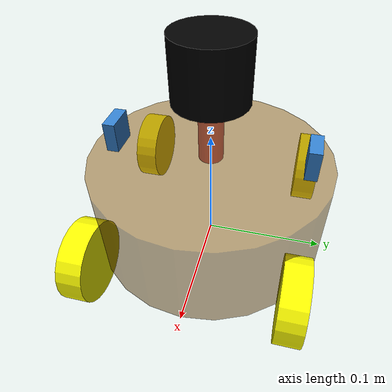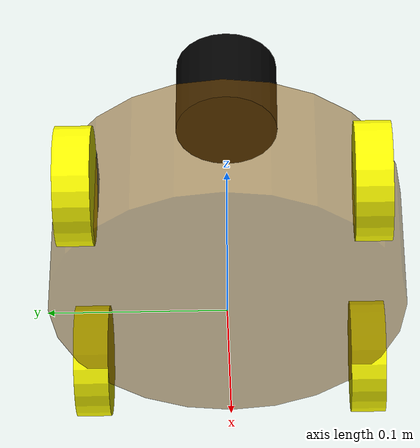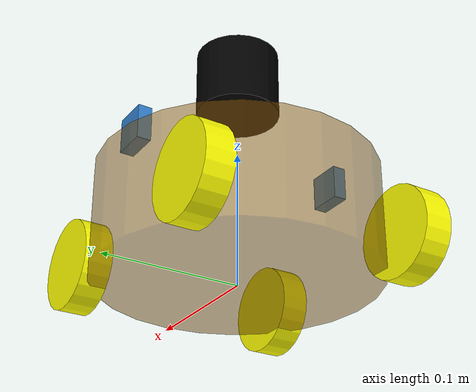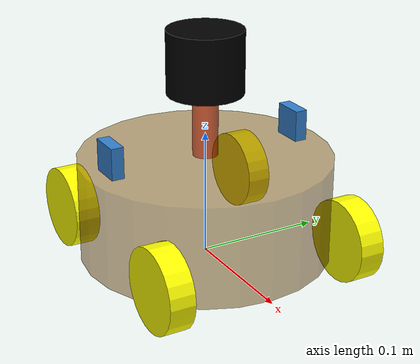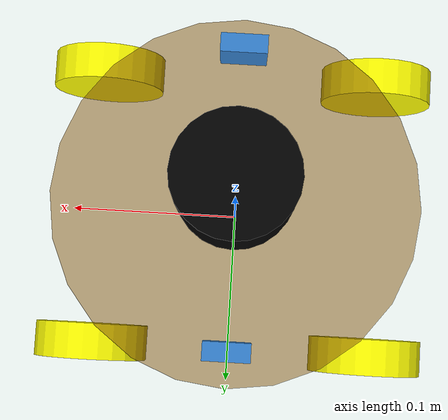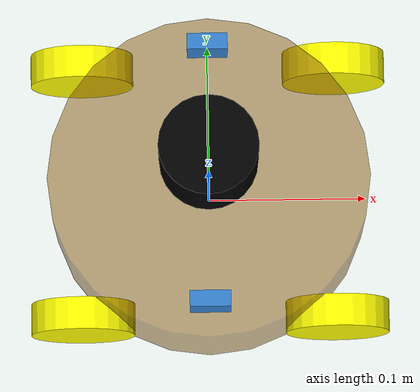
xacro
<robot name="my_robot" xmlns:xacro="http://wiki.ros.org/xacro">
    <!-- 全局参数 -->
    <xacro:property name="PI" value="3.1415926"/>
    <xacro:property name="base_link_length" value="0.08"/>
    <xacro:property name="base_link_radius" value="0.1"/>
    <xacro:property name="wheel_radius" value="0.0325"/>
    <xacro:property name="wheel_length" value="0.02"/>
    <xacro:property name="wheel_x_offset" value="0.08"/>
    <xacro:property name="wheel_y_offset" value="0.08"/>
    <xacro:property name="earth_space" value="0.010"/>
    <xacro:property name="base_link_m" value="2.0"/>
    <xacro:property name="wheel_m" value="0.1"/>
    <xacro:property name="camera_height" value="0.05"/>

    <!-- 引入 xacro 文件 -->
    <xacro:include filename="cylinder_inertial_matrix.urdf.xacro" />
    <xacro:include filename="my_base.urdf.xacro" />
    <xacro:my_base /> <!-- 调用宏来生成底盘 -->
    <xacro:include filename="my_camera.urdf.xacro" />
    <xacro:include filename="my_laser.urdf.xacro" />

    <!-- 绝对位姿获取插件 -->
    <gazebo>
      <plugin name="odom_plugin" filename="libodom_plugin.so">
        <topic_name>/absolute_pose</topic_name>
        <publish_rate>50</publish_rate>
      </plugin>
    </gazebo>

    <!-- 平面移动插件 -->
    <gazebo>
      <plugin name="planar_move_plugin" filename="libgazebo_ros_planar_move.so">
        <commandTopic>cmd_vel</commandTopic>
        <odometryTopic>odom</odometryTopic>
        <odometryFrame>odom</odometryFrame>
        <odometryRate>50.0</odometryRate>
        <robotBaseFrame>base_footprint</robotBaseFrame>
        <update_rate>50</update_rate>
      </plugin>
    </gazebo>

    <!-- 雷达传感器仿真插件 -->
  <gazebo reference="laser">
      <sensor type="ray" name="rplidar">
          <pose>0 0 0 0 0 0</pose>
          <visualize>false</visualize> <!-- Gazebo中显示雷达探测线 -->
          <update_rate>10</update_rate>
          <ray>
              <scan>
                  <horizontal>
                      <samples>360</samples>
                      <resolution>1</resolution>
                      <min_angle>-3.14159</min_angle>
                      <max_angle>3.14159</max_angle>
                  </horizontal>
              </scan>
              <range>
                  <min>0.15</min>
                  <max>12.0</max>
                  <resolution>0.01</resolution>
              </range>
              <noise>
                  <type>gaussian</type>
                  <mean>0.0</mean>
                  <stddev>0.01</stddev>
              </noise>
          </ray>
          <plugin name="gazebo_ros_rplidar_controller" filename="libgazebo_ros_laser.so">
              <topicName>/scan</topicName>
              <frameName>laser</frameName>
          </plugin>
      </sensor>
  </gazebo>
</robot>

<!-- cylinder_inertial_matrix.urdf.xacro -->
<robot name="base" xmlns:xacro="http://wiki.ros.org/xacro">
    <!-- 惯性矩阵 -->
    <xacro:macro name="sphere_inertial_matrix" params="m r">
        <inertial>
            <mass value="${m}" />
            <inertia ixx="${2*m*r*r/5}" ixy="0" ixz="0"
                iyy="${2*m*r*r/5}" iyz="0"
                izz="${2*m*r*r/5}" />
        </inertial>
    </xacro:macro>

    <xacro:macro name="cylinder_inertial_matrix" params="m r h">
        <inertial>
            <mass value="${m}" />
            <inertia ixx="${m*(3*r*r+h*h)/12}" ixy = "0" ixz = "0"
                iyy="${m*(3*r*r+h*h)/12}" iyz = "0"
                izz="${m*r*r/2}" />
        </inertial>
    </xacro:macro>

    <xacro:macro name="Box_inertial_matrix" params="m l w h">
       <inertial>
               <mass value="${m}" />
               <inertia ixx="${m*(h*h + l*l)/12}" ixy = "0" ixz = "0"
                   iyy="${m*(w*w + l*l)/12}" iyz= "0"
                   izz="${m*(w*w + h*h)/12}" />
       </inertial>
   </xacro:macro>
</robot>

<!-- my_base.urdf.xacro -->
<robot name="my_base" xmlns:xacro="http://www.ros.org/wiki/xacro">
  <xacro:macro name="my_base">
    <!-- 宏:颜色设置 -->
    <material name="black">
        <color rgba="0.0 0.0 0.0 1.0" />
    </material>
    <material name="yellow">
        <color rgba="1.0 1.0 0.0 1.0" />
    </material>

    <!-- 虚拟的 root link（无质量，无惯性） -->
    <link name="base_footprint"/>
    <!-- 原 base_link 是 base_footprint 的子链接 -->
    <joint name="base_footprint_to_base_link" type="fixed">
      <parent link="base_footprint"/>
      <child link="base_link"/>
      <origin xyz="0 0 ${wheel_radius + earth_space}" rpy="0 0 0"/>
    </joint>

    <!-- 底盘主体 -->
    <link name="base_link">
      <!-- 可视化 -->
      <visual>
        <geometry>
          <cylinder radius="${base_link_radius}" length="${base_link_length}" />
        </geometry>
        <origin xyz="0 0 0" rpy="0 0 0" />
        <material name="yellow">
          <color rgba="0.5 0.3 0.0 0.5" />
        </material>
      </visual>

      <!-- 碰撞体 -->
      <collision>
        <geometry>
          <cylinder radius="${base_link_radius}" length="${base_link_length}" />
        </geometry>
        <origin xyz="0 0 0" rpy="0 0 0" />
      </collision>

      <!-- 惯性矩阵 -->
      <inertial>
        <mass value="${base_link_m}"/>
        <origin xyz="0 0 0" rpy="0 0 0"/>
        <inertia
          ixx="${(base_link_m * (3 * base_link_radius * base_link_radius + base_link_length * base_link_length)) / 12.0}"
          ixy="0"
          ixz="0"
          iyy="${(base_link_m * (3 * base_link_radius * base_link_radius + base_link_length * base_link_length)) / 12.0}"
          iyz="0"
          izz="0.1"/>
      </inertial>
    </link>

    <!-- 四个驱动轮宏 -->
    <xacro:macro name="add_wheel" params="name x y">
      <link name="${name}_wheel">
        <visual>
          <geometry>
            <cylinder radius="${wheel_radius}" length="${wheel_length}" />
          </geometry>
          <origin xyz="0 0 0" rpy="${PI/2} 0 0" />
          <material name="yellow"/>
        </visual>
        <collision>
          <geometry>
            <cylinder radius="${wheel_radius}" length="${wheel_length}" />
          </geometry>
          <origin xyz="0 0 0" rpy="${PI/2} 0 0" />
          <!-- 添加摩擦力 -->
          <surface>
            <friction>
              <ode>
                <mu>1.0</mu>      <!-- 主摩擦系数 -->
                <mu2>1.0</mu2>    <!-- 次摩擦系数 -->
              </ode>
            </friction>
          </surface>
        </collision>
        <xacro:cylinder_inertial_matrix m="${wheel_m}" r="${wheel_radius}" h="${wheel_length}"/>
      </link>

      <joint name="${name}_wheel_joint" type="continuous">
        <parent link="base_link"/>
        <child link="${name}_wheel"/>
        <origin xyz="${x} ${y} ${-(earth_space + base_link_length/2 - wheel_radius)}" rpy="0 0 0"/>
        <axis xyz="0 1 0"/>
      </joint>
      <gazebo reference="${name}_wheel">
        <material>Gazebo/yellow</material>
      </gazebo>
    </xacro:macro>

    <!-- 四个角生成麦轮 -->
    <xacro:add_wheel name="front_left"  x="${ wheel_x_offset}"  y="${ wheel_y_offset}"/>
    <xacro:add_wheel name="front_right" x="${ wheel_x_offset}"  y="-${ wheel_y_offset}"/>
    <xacro:add_wheel name="rear_left"   x="-${wheel_x_offset}" y="${ wheel_y_offset}"/>
    <xacro:add_wheel name="rear_right"  x="-${wheel_x_offset}" y="-${wheel_y_offset}"/>
  </xacro:macro>
</robot>

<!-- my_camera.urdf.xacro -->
<!-- 摄像头 -->
<robot name="my_camera" xmlns:xacro="http://wiki.ros.org/xacro">
    <!-- 属性 -->
    <xacro:property name="camera_length" value="0.01" /> <!-- 摄像头长度(x) -->
    <xacro:property name="camera_width" value="0.025" /> <!-- 摄像头宽度(y) -->
    <xacro:property name="camera_height" value="0.025" /> <!-- 摄像头高度(z) -->
    <xacro:property name="camera_m" value="0.01" /> <!-- 摄像头质量 -->

    <!-- 安装位置 -->
    <xacro:property name="camera_x" value="0.0" />  <!-- 与车体中心对齐 -->
    <xacro:property name="camera_y_offset" value="0.08" />  <!-- 两侧偏移距离 -->
    <xacro:property name="camera_z" value="${base_link_length / 2 + camera_height / 2}" />

    <!-- 摄像头宏定义 - 可重复使用 -->
    <xacro:macro name="camera_module" params="name parent_link x y z yaw">
        <!-- 摄像头 Link -->
        <link name="${name}">
            <visual>
                <geometry>
                    <box size="${camera_length} ${camera_width} ${camera_height}" />
                </geometry>
                <origin xyz="0 0 0" rpy="0 0 0" />
                <material name="camera_blue">
                    <color rgba="0.2 0.5 0.8 1.0" />
                </material>
            </visual>
            <collision>
                <geometry>
                    <box size="${camera_length} ${camera_width} ${camera_height}" />
                </geometry>
                <origin xyz="0 0 0" rpy="0 0 0" />
            </collision>
            <xacro:Box_inertial_matrix m="${camera_m}" l="${camera_length}" w="${camera_width}" h="${camera_height}" />
        </link>

        <!-- 摄像头 Joint -->
        <joint name="${name}_joint" type="fixed">
            <parent link="${parent_link}" />
            <child link="${name}" />
            <origin xyz="${x} ${y} ${z}" rpy="0 0 ${yaw}" />
        </joint>

        <!-- Gazebo 材质 -->
        <gazebo reference="${name}">
            <material>Gazebo/Blue</material>
        </gazebo>

        <!-- Gazebo 摄像头传感器插件 -->
        <gazebo reference="${name}">
            <sensor type="camera" name="${name}_sensor">
                <update_rate>30.0</update_rate>
                <visualize>true</visualize>  <!-- 在 Gazebo 中显示摄像头视锥 -->
                <camera name="${name}">
                    <horizontal_fov>1.6</horizontal_fov>  <!-- 90度视角 = 1.6 弧度 -->
                    <image>
                        <width>1280</width>  <!-- 720p 宽度 -->
                        <height>720</height>  <!-- 720p 高度 -->
                        <format>R8G8B8</format>
                    </image>
                    <clip>
                        <near>0.02</near>
                        <far>10.0</far>
                    </clip>
                    <noise>
                        <type>gaussian</type>
                        <mean>0.0</mean>
                        <stddev>0.007</stddev>
                    </noise>
                </camera>
                <plugin name="${name}_controller" filename="libgazebo_ros_camera.so">
                    <ros>
                        <namespace></namespace>
                        <remapping>image_raw:=${name}/image_raw</remapping>
                        <remapping>camera_info:=${name}/camera_info</remapping>
                    </ros>
                    <camera_name>${name}</camera_name>
                    <frame_name>${name}</frame_name>
                    <hack_baseline>0.07</hack_baseline>
                </plugin>
            </sensor>
        </gazebo>
    </xacro:macro>

    <!-- 左侧摄像头 - 朝左 (yaw = 1.5708 = 90度) -->
    <xacro:camera_module
        name="camera1"
        parent_link="base_link"
        x="${camera_x}"
        y="${camera_y_offset}"
        z="${camera_z}"
        yaw="1.5708" />

    <!-- 右侧摄像头 - 朝右 (yaw = -1.5708 = -90度) -->
    <xacro:camera_module
        name="camera2"
        parent_link="base_link"
        x="${camera_x}"
        y="${-camera_y_offset}"
        z="${camera_z}"
        yaw="-1.5708" />

</robot>

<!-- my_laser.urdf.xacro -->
<!-- 雷达 -->
<robot name="my_laser" xmlns:xacro="http://wiki.ros.org/xacro">
    <xacro:property name="support_length" value="0.05" /> <!-- 支架长度 -->
    <xacro:property name="support_radius" value="0.01" /> <!-- 支架半径 -->
    <xacro:property name="support_x" value="0.0" /> <!-- 支架安装的x坐标 -->
    <xacro:property name="support_y" value="0.0" /> <!-- 支架安装的y坐标 -->
    <xacro:property name="support_z" value="${base_link_length / 2 + support_length / 2}" /> <!-- 支架安装的z坐标:底盘高度 / 2 + 支架高度 / 2  -->

    <xacro:property name="support_m" value="0.02" /> <!-- 支架质量 -->

    <link name="support">
        <visual>
            <geometry>
                <cylinder radius="${support_radius}" length="${support_length}" />
            </geometry>
            <origin xyz="0.0 0.0 0.0" rpy="0.0 0.0 0.0" />
            <material name="red">
                <color rgba="0.8 0.2 0.0 0.8" />
            </material>
        </visual>

        <collision>
            <geometry>
                <cylinder radius="${support_radius}" length="${support_length}" />
            </geometry>
            <origin xyz="0.0 0.0 0.0" rpy="0.0 0.0 0.0" />
        </collision>

        <xacro:cylinder_inertial_matrix m="${support_m}" r="${support_radius}" h="${support_length}" />

    </link>

    <joint name="support2base_link" type="fixed">
        <parent link="base_link" />
        <child link="support" />
        <origin xyz="${support_x} ${support_y} ${support_z}" />
    </joint>

    <gazebo reference="support">
        <material>Gazebo/White</material>
    </gazebo>

    <!-- 雷达属性 -->
    <xacro:property name="laser_length" value="0.05" /> <!-- 雷达长度 -->
    <xacro:property name="laser_radius" value="0.03" /> <!-- 雷达半径 -->
    <xacro:property name="laser_x" value="0.0" /> <!-- 雷达安装的x坐标 -->
    <xacro:property name="laser_y" value="0.0" /> <!-- 雷达安装的y坐标 -->
    <xacro:property name="laser_z" value="${support_length / 2 + laser_length / 2}" /> <!-- 雷达安装的z坐标:支架高度 / 2 + 雷达高度 / 2  -->
    <xacro:property name="laser_m" value="0.1" /> <!-- 雷达质量 -->

    <!-- 雷达关节以及link -->
    <link name="laser">
        <visual>
            <geometry>
                <cylinder radius="${laser_radius}" length="${laser_length}" />
            </geometry>
            <origin xyz="0.0 0.0 0.0" rpy="0.0 0.0 0.0" />
            <material name="black" />
        </visual>
        <collision>
            <geometry>
                <cylinder radius="${laser_radius}" length="${laser_length}" />
            </geometry>
            <origin xyz="0.0 0.0 0.0" rpy="0.0 0.0 0.0" />
        </collision>
        <xacro:cylinder_inertial_matrix m="${laser_m}" r="${laser_radius}" h="${laser_length}" />
    </link>

    <joint name="laser2support" type="fixed">
        <parent link="support" />
        <child link="laser" />
        <origin xyz="${laser_x} ${laser_y} ${laser_z}" />
    </joint>
    <gazebo reference="laser">
        <material>Gazebo/Black</material>
    </gazebo>

    <!-- 雷达传感器仿真插件 -->
    <gazebo reference="laser">
        <sensor name="laser_sensor" type="ray">
            <visualize>true</visualize>
            <update_rate>10</update_rate>
            <ray>
                <scan>
                    <horizontal>
                        <samples>720</samples>
                        <resolution>1</resolution>
                        <min_angle>-3.14159</min_angle>
                        <max_angle>3.14159</max_angle>
                    </horizontal>
                </scan>
                <range>
                    <min>0.15</min>
                    <max>12.0</max>
                    <resolution>0.01</resolution>
                </range>
            </ray>
            <plugin name="gazebo_ros_laser" filename="libgazebo_ros_ray_sensor.so">
                <ros>
                    <remapping>~/out:=scan</remapping>
                </ros>
                <output_type>sensor_msgs/LaserScan</output_type>
                <frame_name>laser</frame_name>
            </plugin>
        </sensor>
    </gazebo>
</robot>
